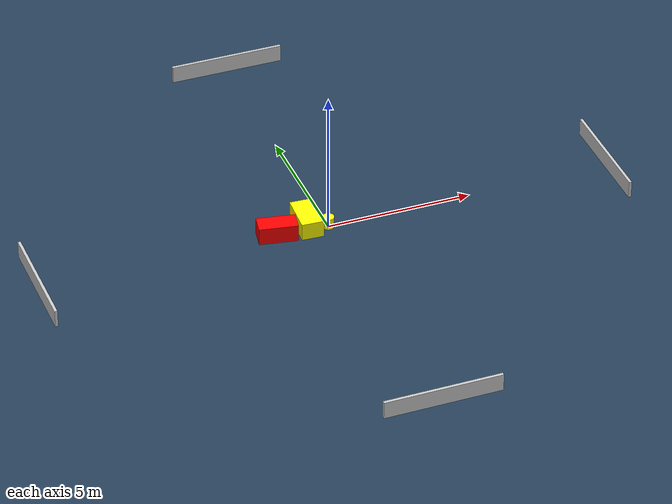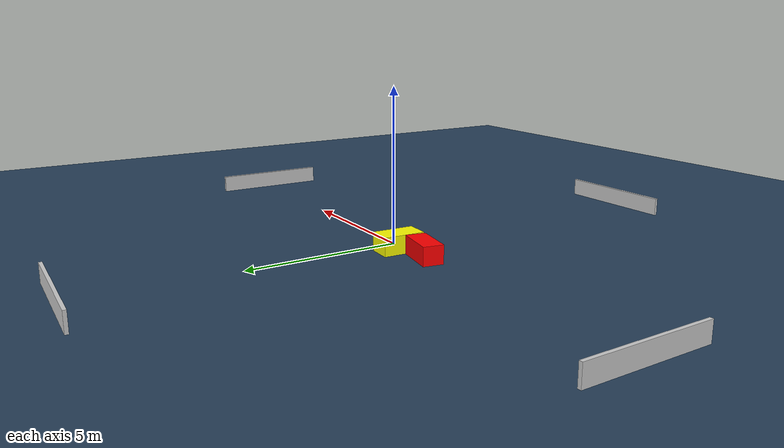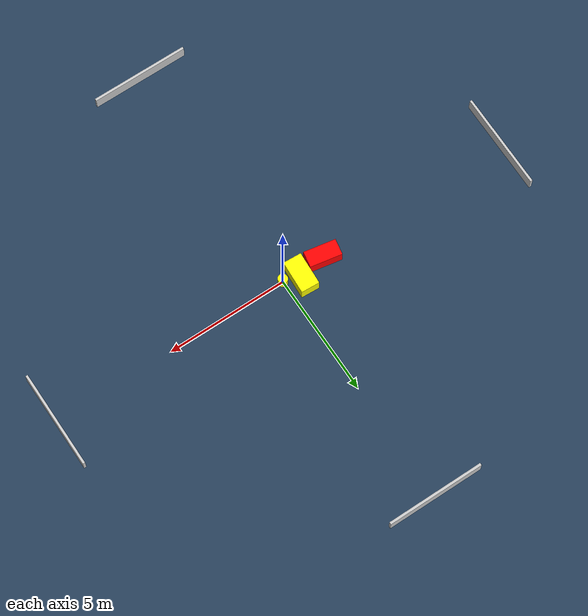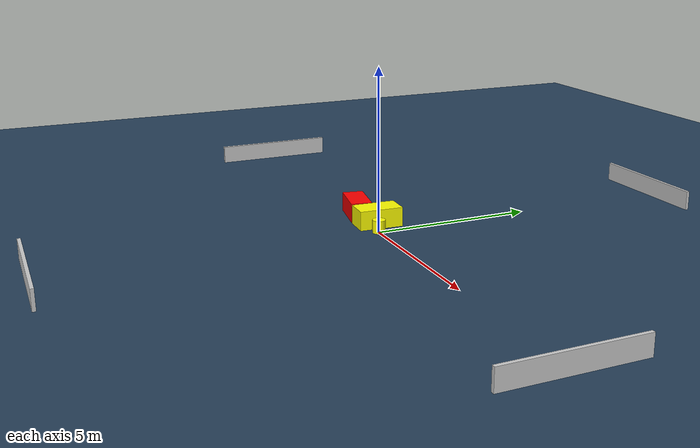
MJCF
<?xml version="1.0" ?>
<mujoco model="generated_environment">
  <option timestep="0.01" integrator="RK4" cone="elliptic"/>
  <default>
    <geom density="1"/>
  </default>
  <asset>
    <texture builtin="gradient" height="3072" name="skybox" rgb1="0.3 0.5 0.7" rgb2="0 0 0" type="skybox" width="512"/>
    <texture builtin="checker" height="300" name="groundplane" rgb1="0.2 0.3 0.4" rgb2="0.1 0.2 0.3" type="2d" width="300"/>
    <material name="groundplane" reflectance="0.2" texrepeat="5 5" texture="groundplane"/>
  </asset>
  <worldbody>
    <light dir="0 0 -1" directional="true" pos="0 0 1.5"/>
    <geom condim="3" friction="0.5 0.005 0.001" material="groundplane" name="floor" pos="0 0 0" size="0 0 0.05" type="plane"/>
    <body name="walls">
      <geom name="wall_1" condim="4" pos="-10.0 0.0 0.3" rgba="0.800000011920929 0.800000011920929 0.800000011920929 1.0" size="0.05 2.0 0.3" type="box"/>
      <geom name="wall_2" condim="4" pos="10.0 0.0 0.3" rgba="0.800000011920929 0.800000011920929 0.800000011920929 1.0" size="0.05 2.0 0.3" type="box"/>
      <geom name="wall_3" condim="4" pos="0.0 -10.0 0.3" rgba="0.800000011920929 0.800000011920929 0.800000011920929 1.0" size="2.0 0.05 0.3" type="box"/>
      <geom name="wall_4" condim="4" pos="0.0 10.0 0.3" rgba="0.800000011920929 0.800000011920929 0.800000011920929 1.0" size="2.0 0.05 0.3" type="box"/>
    </body>
    <body name="robot">
      <joint name="joint_x" type="slide" pos="0 0 0" axis="1 0 0"/>
      <joint name="joint_y" type="slide" pos="0 0 0" axis="0 1 0"/>
      <geom name="robot" type="cylinder" pos="0.0 0.0 0.2" size="0.2 0.2 0.0" mass="5.0" friction="1.0 0.005 0.0001" condim="4" rgba="1.0 1.0 0.0 1.0"/>
    </body>
    <body name="obstacle_1_movable">
      <geom name="obstacle_1_movable" condim="4" pos="-0.6658955355347294 0.24421410987457037 0.3" euler="0 0 267.0557878414293" friction="0.0 0.005 0.001" rgba="1.0 1.0 0.0 1.0" size="0.6806466168792806 0.3808121804920114 0.3" type="box" mass="0.1"/>
      <joint type="free"/>
    </body>
    <body name="obstacle_2_static">
      <geom name="obstacle_2_static" condim="4" pos="-1.7771335254170844 0.039831450052682446 0.3" euler="0 0 79.78012670744928" friction="0.0 0.005 0.001" rgba="1.0 0.0 0.0 1.0" size="0.32854003376631136 0.6594930210590992 0.3" type="box"/>
    </body>
  </worldbody>
  <actuator>
    <motor name="actuator_x" joint="joint_x" gear="1" ctrlrange="-1 1"/>
    <motor name="actuator_y" joint="joint_y" gear="1" ctrlrange="-1 1"/>
  </actuator>
</mujoco>
